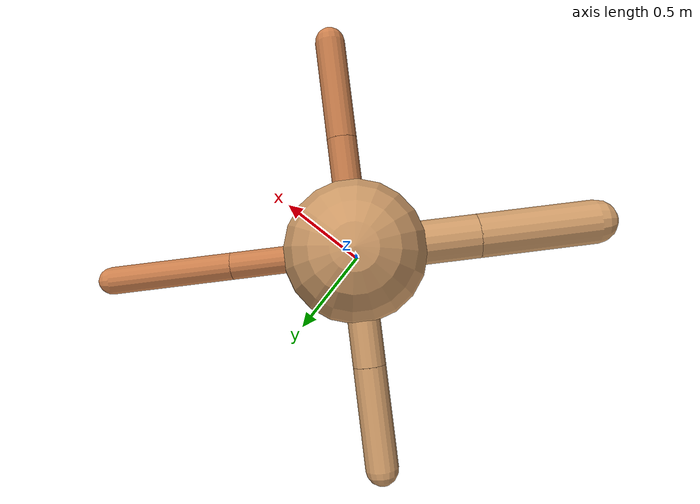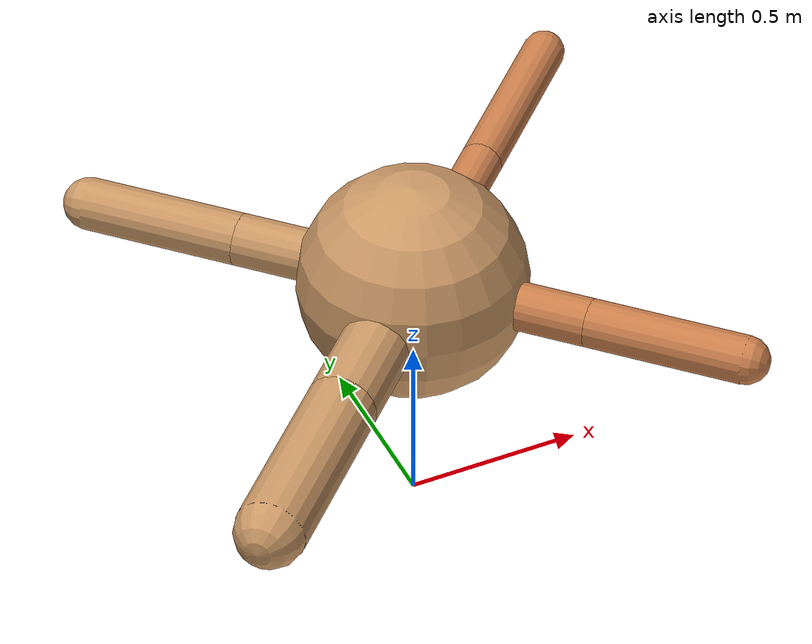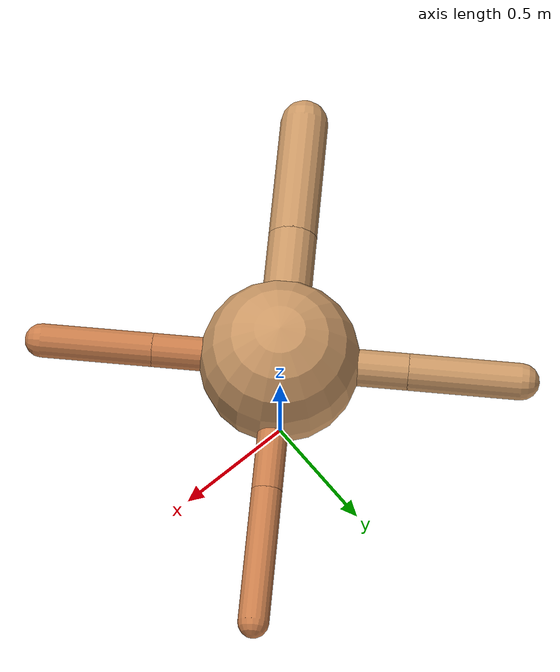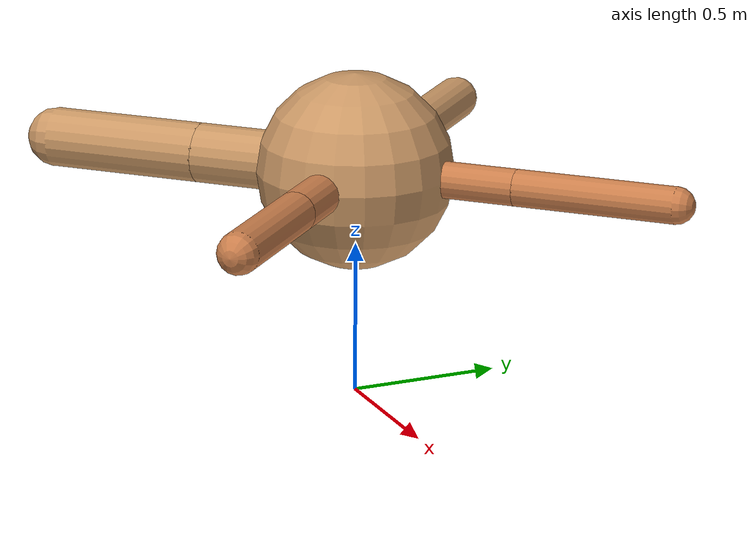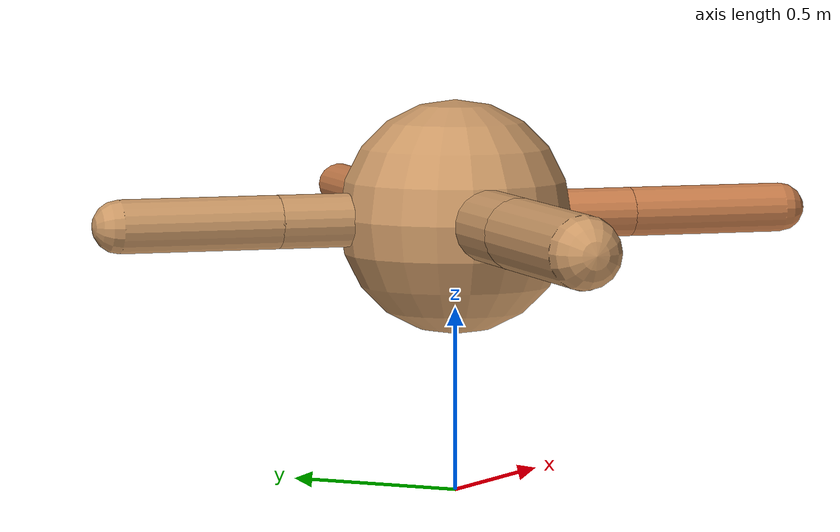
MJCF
<?xml version="1.0" ?>
<mujoco model="ant">

	<compiler angle="degree" coordinate="local" inertiafromgeom="true"/>

	<option integrator="RK4" timestep="0.01"/>

	<custom>

		<numeric data="0.0 0.0 0.55 1.0 0.0 0.0 0.0 0.0 1.0 0.0 -1.0 0.0 -1.0 0.0 1.0" name="init_qpos"/>

	</custom>

	<default>

		<joint armature="1" damping="1" limited="true"/>

		<geom conaffinity="0" condim="3" density="5.0" friction="1.5 0.1 0.1" margin="0.01" rgba="0.8 0.6 0.4 1"/>

	</default>

	<worldbody>

		<body name="torso" pos="0 0 0.75">

			<geom name="torso_geom" pos="0 0 0" size="0.32053784593616574" type="sphere"/>

			<!--joint armature="0" damping="0" limited="false" margin="0.01" name="root" pos="0 0 0" type="free"/-->

			<body name="front_left_leg" pos="0 0 0">

				<geom fromto="0 0 0 0.2 0.2 0" name="aux_1_geom" size="0.06006857155265286" type="capsule" rgba=".8 .5 .3 1"/>

				<body name="aux_1" pos="0.2 0.2 0">

					<joint axis="0 0 1" name="hip_1" pos="0.0 0.0 0.0" range="-40 40" type="hinge"/>

					<geom fromto="0 0 0 0.186005319586935 0.186005319586935 0" name="left_leg_geom" size="0.06006857155265286" type="capsule" rgba=".8 .5 .3 1"/>

					<body pos="0.186005319586935 0.186005319586935 0" name="front_left_foot">

						<joint axis="-1 1 0" name="ankle_1" pos="0.0 0.0 0.0" range="30 100" type="hinge"/>

						<geom fromto="0 0 0 0.37201063917387 0.37201063917387 0" name="left_ankle_geom" size="0.06006857155265286" type="capsule" rgba=".8 .5 .3 1"/>

					</body>

				</body>

			</body>

			<body name="front_right_leg" pos="0 0 0">

				<geom fromto="0 0 0 -0.2 0.2 0" name="aux_2_geom" size="0.07310384717403967" type="capsule"/>

				<body name="aux_2" pos="-0.2 0.2 0">

					<joint axis="0 0 1" name="hip_2" pos="0.0 0.0 0.0" range="-40 40" type="hinge"/>

					<geom fromto="0 0 0 -0.15693813573652446 0.15693813573652446 0" name="right_leg_geom" size="0.07310384717403967" type="capsule"/>

					<body pos="-0.15693813573652446 0.15693813573652446 0" name="front_right_foot">

						<joint axis="1 1 0" name="ankle_2" pos="0.0 0.0 0.0" range="-100 -30" type="hinge"/>

						<geom fromto="0 0 0 -0.3138762714730489 0.3138762714730489 0" name="right_ankle_geom" size="0.07310384717403967" type="capsule"/>

					</body>

				</body>

			</body>

			<body name="left_back_leg" pos="0 0 0">

				<geom fromto="0 0 0 -0.2 -0.2 0" name="aux_3_geom" size="0.0984561841550915" type="capsule"/>

				<body name="aux_3" pos="-0.2 -0.2 0">

					<joint axis="0 0 1" name="hip_3" pos="0.0 0.0 0.0" range="-40 40" type="hinge"/>

					<geom fromto="0 0 0 -0.18434511898452813 -0.18434511898452813 0" name="back_leg_geom" size="0.0984561841550915" type="capsule"/>

					<body pos="-0.18434511898452813 -0.18434511898452813 0" name="left_back_foot">

						<joint axis="-1 1 0" name="ankle_3" pos="0.0 0.0 0.0" range="-100 -30" type="hinge"/>

						<geom fromto="0 0 0 -0.36869023796905626 -0.36869023796905626 0" name="third_ankle_geom" size="0.0984561841550915" type="capsule"/>

					</body>

				</body>

			</body>

			<body name="right_back_leg" pos="0 0 0">

				<geom fromto="0 0 0 0.2 -0.2 0" name="aux_4_geom" size="0.06710352510211282" type="capsule" rgba=".8 .5 .3 1"/>

				<body name="aux_4" pos="0.2 -0.2 0">

					<joint axis="0 0 1" name="hip_4" pos="0.0 0.0 0.0" range="-40 40" type="hinge"/>

					<geom fromto="0 0 0 0.15617865644904277 -0.15617865644904277 0" name="rightback_leg_geom" size="0.06710352510211282" type="capsule" rgba=".8 .5 .3 1"/>

					<body pos="0.15617865644904277 -0.15617865644904277 0" name="right_back_foot">

						<joint axis="1 1 0" name="ankle_4" pos="0.0 0.0 0.0" range="30 100" type="hinge"/>

						<geom fromto="0 0 0 0.31235731289808555 -0.31235731289808555 0" name="fourth_ankle_geom" size="0.06710352510211282" type="capsule" rgba=".8 .5 .3 1"/>

					</body>

				</body>

			</body>

		</body>

	</worldbody>

	<actuator>

		<motor ctrllimited="true" ctrlrange="-1.0 1.0" joint="hip_4" gear="150"/>

		<motor ctrllimited="true" ctrlrange="-1.0 1.0" joint="ankle_4" gear="150"/>

		<motor ctrllimited="true" ctrlrange="-1.0 1.0" joint="hip_1" gear="150"/>

		<motor ctrllimited="true" ctrlrange="-1.0 1.0" joint="ankle_1" gear="150"/>

		<motor ctrllimited="true" ctrlrange="-1.0 1.0" joint="hip_2" gear="150"/>

		<motor ctrllimited="true" ctrlrange="-1.0 1.0" joint="ankle_2" gear="150"/>

		<motor ctrllimited="true" ctrlrange="-1.0 1.0" joint="hip_3" gear="150"/>

		<motor ctrllimited="true" ctrlrange="-1.0 1.0" joint="ankle_3" gear="150"/>

	</actuator>

</mujoco>
